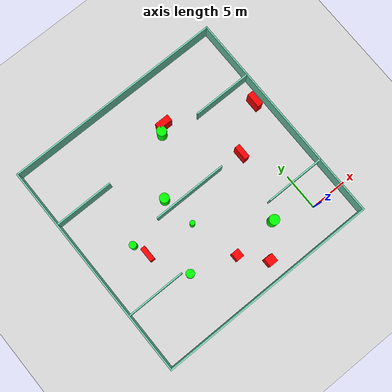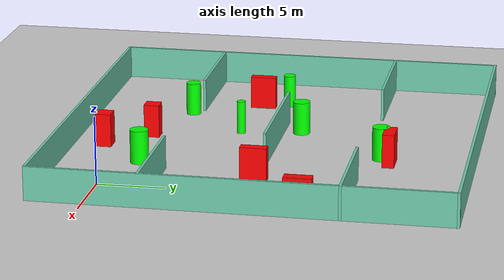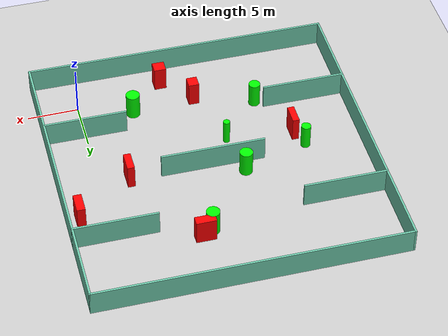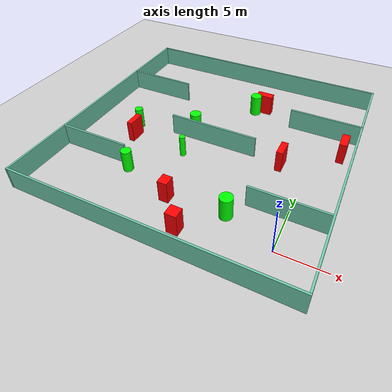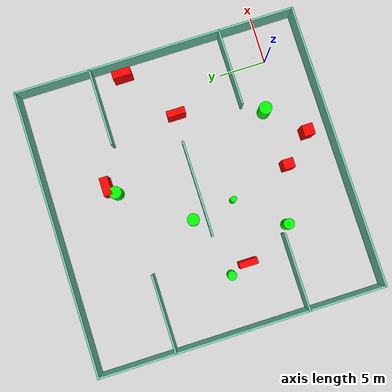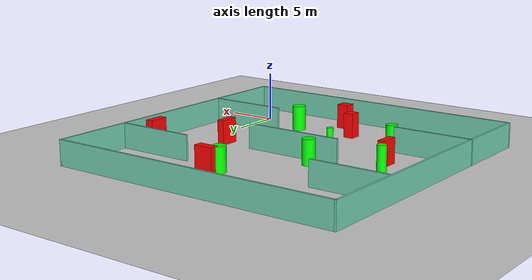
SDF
<sdf version="1.7">
 <world name="default">
  <light name="sun" type="directional">
   <pose>0 0 10 0 -0 0</pose>
   <diffuse>0.8 0.8 0.8 1</diffuse>
   <specular>0.2 0.2 0.2 1</specular>
   <attenuation>
    <range>1000</range>
    <constant>0.9</constant>
    <linear>0.01</linear>
    <quadratic>0.001</quadratic>
   </attenuation>
   <direction>-0.5 0.1 -0.9</direction>
   <spot><inner_angle>0</inner_angle><outer_angle>0</outer_angle><falloff>0</falloff></spot>
  </light>
  <model name="ground_plane">
   <static>1</static>
   <link name="link">
    <collision name="collision">
     <geometry><plane><normal>0 0 1</normal><size>100 100</size></plane></geometry>
     <surface>
      <contact><collide_bitmask>65535</collide_bitmask></contact>
      <friction><ode><mu>100</mu><mu2>50</mu2></ode></friction>
     </surface>
    </collision>
    <visual name="visual">
     <cast_shadows>0</cast_shadows>
     <geometry><plane><normal>0 0 1</normal><size>100 100</size></plane></geometry>
     <material>
      <script><uri>file://media/materials/scripts/gazebo.material</uri><name>Gazebo/Grey</name></script>
     </material>
    </visual>
   </link>
  </model>
  <gravity>0 0 -9.8</gravity>
  <magnetic_field>6e-06 2.3e-05 -4.2e-05</magnetic_field>
  <atmosphere type="adiabatic"/>
  <physics type="ode">
   <max_step_size>0.001</max_step_size>
   <real_time_factor>1</real_time_factor>
   <real_time_update_rate>1000</real_time_update_rate>
  </physics>
  <scene><ambient>0.4 0.4 0.4 1</ambient><background>0.7 0.7 0.7 1</background><shadows>1</shadows></scene>
  <spherical_coordinates>
   <surface_model>EARTH_WGS84</surface_model>
   <latitude_deg>0</latitude_deg>
   <longitude_deg>0</longitude_deg>
   <elevation>0</elevation>
   <heading_deg>0</heading_deg>
  </spherical_coordinates>
  <model name="my_base_walls">
   <link name="Wall_10">
    <collision name="Wall_10_Collision">
     <geometry><box><size>8.2 0.2 2.5</size></box></geometry>
     <pose>0 0 1.25 0 -0 0</pose>
    </collision>
    <visual name="Wall_10_Visual">
     <pose>0 0 1.25 0 -0 0</pose>
     <geometry><box><size>8.2 0.2 2.5</size></box></geometry>
     <material>
      <script><uri>file://media/materials/scripts/gazebo.material</uri><name>Gazebo/Grey</name></script>
      <ambient>0.435294 0.796078 0.67451 1</ambient>
     </material>
     <meta><layer>0</layer></meta>
    </visual>
    <pose>-11 -7 0 0 -0 0</pose>
   </link>
   <link name="Wall_12">
    <collision name="Wall_12_Collision">
     <geometry><box><size>8.2 0.2 2.5</size></box></geometry>
     <pose>0 0 1.25 0 -0 0</pose>
    </collision>
    <visual name="Wall_12_Visual">
     <pose>0 0 1.25 0 -0 0</pose>
     <geometry><box><size>8.2 0.2 2.5</size></box></geometry>
     <material>
      <script><uri>file://media/materials/scripts/gazebo.material</uri><name>Gazebo/Grey</name></script>
      <ambient>0.435294 0.796078 0.67451 1</ambient>
     </material>
     <meta><layer>0</layer></meta>
    </visual>
    <pose>-11 7 0 0 -0 0</pose>
   </link>
   <link name="Wall_14">
    <collision name="Wall_14_Collision">
     <geometry><box><size>8.2 0.2 2.5</size></box></geometry>
     <pose>0 0 1.25 0 -0 0</pose>
    </collision>
    <visual name="Wall_14_Visual">
     <pose>0 0 1.25 0 -0 0</pose>
     <geometry><box><size>8.2 0.2 2.5</size></box></geometry>
     <material>
      <script><uri>file://media/materials/scripts/gazebo.material</uri><name>Gazebo/Grey</name></script>
      <ambient>0.435294 0.796078 0.67451 1</ambient>
     </material>
     <meta><layer>0</layer></meta>
    </visual>
    <pose>11 7 0 0 -0 3.14159</pose>
   </link>
   <link name="Wall_16">
    <collision name="Wall_16_Collision">
     <geometry><box><size>10.2 0.2 2.5</size></box></geometry>
     <pose>0 0 1.25 0 -0 0</pose>
    </collision>
    <visual name="Wall_16_Visual">
     <pose>0 0 1.25 0 -0 0</pose>
     <geometry><box><size>10.2 0.2 2.5</size></box></geometry>
     <material>
      <script><uri>file://media/materials/scripts/gazebo.material</uri><name>Gazebo/Grey</name></script>
      <ambient>0.435294 0.796078 0.67451 1</ambient>
     </material>
     <meta><layer>0</layer></meta>
    </visual>
    <pose>0 0 0 0 -0 3.14159</pose>
   </link>
   <link name="Wall_2">
    <collision name="Wall_2_Collision">
     <geometry><box><size>30.2 0.2 2.5</size></box></geometry>
     <pose>0 0 1.25 0 -0 0</pose>
    </collision>
    <visual name="Wall_2_Visual">
     <pose>0 0 1.25 0 -0 0</pose>
     <geometry><box><size>30.2 0.2 2.5</size></box></geometry>
     <material>
      <script><uri>file://media/materials/scripts/gazebo.material</uri><name>Gazebo/Grey</name></script>
      <ambient>0.435294 0.796078 0.67451 1</ambient>
     </material>
     <meta><layer>0</layer></meta>
    </visual>
    <pose>0 -15 0 0 -0 3.14159</pose>
   </link>
   <link name="Wall_3">
    <collision name="Wall_3_Collision">
     <geometry><box><size>30.2 0.2 2.5</size></box></geometry>
     <pose>0 0 1.25 0 -0 0</pose>
    </collision>
    <visual name="Wall_3_Visual">
     <pose>0 0 1.25 0 -0 0</pose>
     <geometry><box><size>30.2 0.2 2.5</size></box></geometry>
     <material>
      <script><uri>file://media/materials/scripts/gazebo.material</uri><name>Gazebo/Grey</name></script>
      <ambient>0.435294 0.796078 0.67451 1</ambient>
     </material>
     <meta><layer>0</layer></meta>
    </visual>
    <pose>-15 0 0 0 -0 1.5708</pose>
   </link>
   <link name="Wall_4">
    <collision name="Wall_4_Collision">
     <geometry><box><size>30.2 0.2 2.5</size></box></geometry>
     <pose>0 0 1.25 0 -0 0</pose>
    </collision>
    <visual name="Wall_4_Visual">
     <pose>0 0 1.25 0 -0 0</pose>
     <geometry><box><size>30.2 0.2 2.5</size></box></geometry>
     <material>
      <script><uri>file://media/materials/scripts/gazebo.material</uri><name>Gazebo/Grey</name></script>
      <ambient>0.435294 0.796078 0.67451 1</ambient>
     </material>
     <meta><layer>0</layer></meta>
    </visual>
    <pose>0 15 0 0 -0 0</pose>
   </link>
   <link name="Wall_6">
    <collision name="Wall_6_Collision">
     <geometry><box><size>30.2 0.2 2.5</size></box></geometry>
     <pose>0 0 1.25 0 -0 0</pose>
    </collision>
    <visual name="Wall_6_Visual">
     <pose>0 0 1.25 0 -0 0</pose>
     <geometry><box><size>30.2 0.2 2.5</size></box></geometry>
     <material>
      <script><uri>file://media/materials/scripts/gazebo.material</uri><name>Gazebo/Grey</name></script>
      <ambient>0.435294 0.796078 0.67451 1</ambient>
     </material>
     <meta><layer>0</layer></meta>
    </visual>
    <pose>15 0 0 0 -0 1.5708</pose>
   </link>
   <link name="Wall_8">
    <collision name="Wall_8_Collision">
     <geometry><box><size>8.2 0.2 2.5</size></box></geometry>
     <pose>0 0 1.25 0 -0 0</pose>
    </collision>
    <visual name="Wall_8_Visual">
     <pose>0 0 1.25 0 -0 0</pose>
     <geometry><box><size>8.2 0.2 2.5</size></box></geometry>
     <material>
      <script><uri>file://media/materials/scripts/gazebo.material</uri><name>Gazebo/Grey</name></script>
      <ambient>0.435294 0.796078 0.67451 1</ambient>
     </material>
     <meta><layer>0</layer></meta>
    </visual>
    <pose>11 -7 0 0 -0 3.14159</pose>
   </link>
   <static>1</static>
   <pose>-11 11 0 0 -0 0</pose>
  </model>
  <model name="cylinder1">
   <static>1</static>
   <link name="link">
    <inertial>
     <mass>1</mass>
     <inertia><ixx>0.5</ixx><ixy>0</ixy><ixz>0</ixz><iyy>0.5</iyy><iyz>0</iyz><izz>1</izz></inertia>
    </inertial>
    <collision name="collision">
     <geometry><cylinder><radius>0.653368358320248</radius><length>2.5</length></cylinder></geometry>
    </collision>
    <visual name="visual">
     <geometry><cylinder><radius>0.653368358320248</radius><length>2.5</length></cylinder></geometry>
     <material>
      <ambient>0 1 0 1</ambient>
      <diffuse>0 1 0 1</diffuse>
      <specular>0.1 0.1 0.1 1</specular>
      <emissive>0 0 0 0</emissive>
     </material>
    </visual>
   </link>
   <pose>-8.885819851428613 19.089377044408565 1.25 0 0 0</pose>
  </model>
  <model name="cylinder2">
   <static>1</static>
   <link name="link">
    <inertial>
     <mass>1</mass>
     <inertia><ixx>0.5</ixx><ixy>0</ixy><ixz>0</ixz><iyy>0.5</iyy><iyz>0</iyz><izz>1</izz></inertia>
    </inertial>
    <collision name="collision">
     <geometry><cylinder><radius>0.3280958227784417</radius><length>2.5</length></cylinder></geometry>
    </collision>
    <visual name="visual">
     <geometry><cylinder><radius>0.3280958227784417</radius><length>2.5</length></cylinder></geometry>
     <material>
      <ambient>0 1 0 1</ambient>
      <diffuse>0 1 0 1</diffuse>
      <specular>0.1 0.1 0.1 1</specular>
      <emissive>0 0 0 0</emissive>
     </material>
    </visual>
   </link>
   <pose>-13.137221566746794 7.85901284190545 1.25 0 0 0</pose>
  </model>
  <model name="cylinder3">
   <static>1</static>
   <link name="link">
    <inertial>
     <mass>1</mass>
     <inertia><ixx>0.5</ixx><ixy>0</ixy><ixz>0</ixz><iyy>0.5</iyy><iyz>0</iyz><izz>1</izz></inertia>
    </inertial>
    <collision name="collision">
     <geometry><cylinder><radius>0.5586062884102732</radius><length>2.5</length></cylinder></geometry>
    </collision>
    <visual name="visual">
     <geometry><cylinder><radius>0.5586062884102732</radius><length>2.5</length></cylinder></geometry>
     <material>
      <ambient>0 1 0 1</ambient>
      <diffuse>0 1 0 1</diffuse>
      <specular>0.1 0.1 0.1 1</specular>
      <emissive>0 0 0 0</emissive>
     </material>
    </visual>
   </link>
   <pose>-17.191645455703153 3.2880310419303207 1.25 0 0 0</pose>
  </model>
  <model name="cylinder4">
   <static>1</static>
   <link name="link">
    <inertial>
     <mass>1</mass>
     <inertia><ixx>0.5</ixx><ixy>0</ixy><ixz>0</ixz><iyy>0.5</iyy><iyz>0</iyz><izz>1</izz></inertia>
    </inertial>
    <collision name="collision">
     <geometry><cylinder><radius>0.6773753330402541</radius><length>2.5</length></cylinder></geometry>
    </collision>
    <visual name="visual">
     <geometry><cylinder><radius>0.6773753330402541</radius><length>2.5</length></cylinder></geometry>
     <material>
      <ambient>0 1 0 1</ambient>
      <diffuse>0 1 0 1</diffuse>
      <specular>0.1 0.1 0.1 1</specular>
      <emissive>0 0 0 0</emissive>
     </material>
    </visual>
   </link>
   <pose>-5.2056902855992515 1.8705304508294738 1.25 0 0 0</pose>
  </model>
  <model name="cylinder5">
   <static>1</static>
   <link name="link">
    <inertial>
     <mass>1</mass>
     <inertia><ixx>0.5</ixx><ixy>0</ixy><ixz>0</ixz><iyy>0.5</iyy><iyz>0</iyz><izz>1</izz></inertia>
    </inertial>
    <collision name="collision">
     <geometry><cylinder><radius>0.638076933380183</radius><length>2.5</length></cylinder></geometry>
    </collision>
    <visual name="visual">
     <geometry><cylinder><radius>0.638076933380183</radius><length>2.5</length></cylinder></geometry>
     <material>
      <ambient>0 1 0 1</ambient>
      <diffuse>0 1 0 1</diffuse>
      <specular>0.1 0.1 0.1 1</specular>
      <emissive>0 0 0 0</emissive>
     </material>
    </visual>
   </link>
   <pose>-13.873507909386369 12.375226624854726 1.25 0 0 0</pose>
  </model>
  <model name="cylinder6">
   <static>1</static>
   <link name="link">
    <inertial>
     <mass>1</mass>
     <inertia><ixx>0.5</ixx><ixy>0</ixy><ixz>0</ixz><iyy>0.5</iyy><iyz>0</iyz><izz>1</izz></inertia>
    </inertial>
    <collision name="collision">
     <geometry><cylinder><radius>0.4651038673666166</radius><length>2.5</length></cylinder></geometry>
    </collision>
    <visual name="visual">
     <geometry><cylinder><radius>0.4651038673666166</radius><length>2.5</length></cylinder></geometry>
     <material>
      <ambient>0 1 0 1</ambient>
      <diffuse>0 1 0 1</diffuse>
      <specular>0.1 0.1 0.1 1</specular>
      <emissive>0 0 0 0</emissive>
     </material>
    </visual>
   </link>
   <pose>-20.400464908752493 10.330899073574116 1.25 0 0 0</pose>
  </model>
  <model name="box1">
   <static>1</static>
   <link name="link">
    <inertial>
     <mass>1</mass>
     <inertia><ixx>0.083</ixx><ixy>0</ixy><ixz>0</ixz><iyy>0.083</iyy><iyz>0</iyz><izz>0.083</izz></inertia>
    </inertial>
    <collision name="collision">
     <geometry><box><size>1.040247868324765 1.1530599254549663 2.5</size></box></geometry>
    </collision>
    <visual name="visual">
     <geometry><box><size>1.040247868324765 1.1530599254549663 2.5</size></box></geometry>
     <material>
      <ambient>1 0 0 1</ambient>
      <diffuse>1 0 0 1</diffuse>
      <specular>0.1 0.1 0.1 1</specular>
      <emissive>0 0 0 0</emissive>
     </material>
    </visual>
    <sensor name="my_contact" type="contact">
     <contact><collision>box_collision</collision><topic>__default_topic__</topic></contact>
    </sensor>
   </link>
   <pose>-11.367781675219055 1.4206345543743346 1.25 0 0 0</pose>
  </model>
  <model name="box2">
   <static>1</static>
   <link name="link">
    <inertial>
     <mass>1</mass>
     <inertia><ixx>0.083</ixx><ixy>0</ixy><ixz>0</ixz><iyy>0.083</iyy><iyz>0</iyz><izz>0.083</izz></inertia>
    </inertial>
    <collision name="collision">
     <geometry><box><size>0.8108940916196798 1.9978426295783387 2.5</size></box></geometry>
    </collision>
    <visual name="visual">
     <geometry><box><size>0.8108940916196798 1.9978426295783387 2.5</size></box></geometry>
     <material>
      <ambient>1 0 0 1</ambient>
      <diffuse>1 0 0 1</diffuse>
      <specular>0.1 0.1 0.1 1</specular>
      <emissive>0 0 0 0</emissive>
     </material>
    </visual>
    <sensor name="my_contact" type="contact">
     <contact><collision>box_collision</collision><topic>__default_topic__</topic></contact>
    </sensor>
   </link>
   <pose>2.7469860435366655 14.911902530373975 1.25 0 0 0</pose>
  </model>
  <model name="box3">
   <static>1</static>
   <link name="link">
    <inertial>
     <mass>1</mass>
     <inertia><ixx>0.083</ixx><ixy>0</ixy><ixz>0</ixz><iyy>0.083</iyy><iyz>0</iyz><izz>0.083</izz></inertia>
    </inertial>
    <collision name="collision">
     <geometry><box><size>0.6588611221232352 1.943146825539825 2.5</size></box></geometry>
    </collision>
    <visual name="visual">
     <geometry><box><size>0.6588611221232352 1.943146825539825 2.5</size></box></geometry>
     <material>
      <ambient>1 0 0 1</ambient>
      <diffuse>1 0 0 1</diffuse>
      <specular>0.1 0.1 0.1 1</specular>
      <emissive>0 0 0 0</emissive>
     </material>
    </visual>
    <sensor name="my_contact" type="contact">
     <contact><collision>box_collision</collision><topic>__default_topic__</topic></contact>
    </sensor>
   </link>
   <pose>-19.68914232943888 8.385727784212424 1.25 0 0 0</pose>
  </model>
  <model name="box4">
   <static>1</static>
   <link name="link">
    <inertial>
     <mass>1</mass>
     <inertia><ixx>0.083</ixx><ixy>0</ixy><ixz>0</ixz><iyy>0.083</iyy><iyz>0</iyz><izz>0.083</izz></inertia>
    </inertial>
    <collision name="collision">
     <geometry><box><size>1.947826610656534 0.8835462311668159 2.5</size></box></geometry>
    </collision>
    <visual name="visual">
     <geometry><box><size>1.947826610656534 0.8835462311668159 2.5</size></box></geometry>
     <material>
      <ambient>1 0 0 1</ambient>
      <diffuse>1 0 0 1</diffuse>
      <specular>0.1 0.1 0.1 1</specular>
      <emissive>0 0 0 0</emissive>
     </material>
    </visual>
    <sensor name="my_contact" type="contact">
     <contact><collision>box_collision</collision><topic>__default_topic__</topic></contact>
    </sensor>
   </link>
   <pose>-7.98950960575122 19.830072092760826 1.25 0 0 0</pose>
  </model>
  <model name="box5">
   <static>1</static>
   <link name="link">
    <inertial>
     <mass>1</mass>
     <inertia><ixx>0.083</ixx><ixy>0</ixy><ixz>0</ixz><iyy>0.083</iyy><iyz>0</iyz><izz>0.083</izz></inertia>
    </inertial>
    <collision name="collision">
     <geometry><box><size>1.1856628449587179 1.147984244716595 2.5</size></box></geometry>
    </collision>
    <visual name="visual">
     <geometry><box><size>1.1856628449587179 1.147984244716595 2.5</size></box></geometry>
     <material>
      <ambient>1 0 0 1</ambient>
      <diffuse>1 0 0 1</diffuse>
      <specular>0.1 0.1 0.1 1</specular>
      <emissive>0 0 0 0</emissive>
     </material>
    </visual>
    <sensor name="my_contact" type="contact">
     <contact><collision>box_collision</collision><topic>__default_topic__</topic></contact>
    </sensor>
   </link>
   <pose>-8.657679729400076 -1.5947487061389536 1.25 0 0 0</pose>
  </model>
  <model name="box6">
   <static>1</static>
   <link name="link">
    <inertial>
     <mass>1</mass>
     <inertia><ixx>0.083</ixx><ixy>0</ixy><ixz>0</ixz><iyy>0.083</iyy><iyz>0</iyz><izz>0.083</izz></inertia>
    </inertial>
    <collision name="collision">
     <geometry><box><size>0.7059686270637663 1.938049971970744 2.5</size></box></geometry>
    </collision>
    <visual name="visual">
     <geometry><box><size>0.7059686270637663 1.938049971970744 2.5</size></box></geometry>
     <material>
      <ambient>1 0 0 1</ambient>
      <diffuse>1 0 0 1</diffuse>
      <specular>0.1 0.1 0.1 1</specular>
      <emissive>0 0 0 0</emissive>
     </material>
    </visual>
    <sensor name="my_contact" type="contact">
     <contact><collision>box_collision</collision><topic>__default_topic__</topic></contact>
    </sensor>
   </link>
   <pose>-2.850521583404735 10.779602098863316 1.25 0 0 0</pose>
  </model>
 </world>
</sdf>
